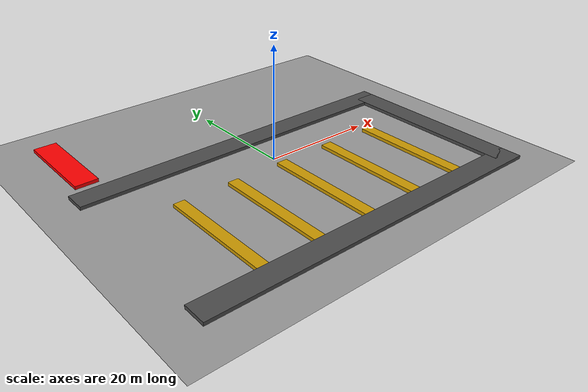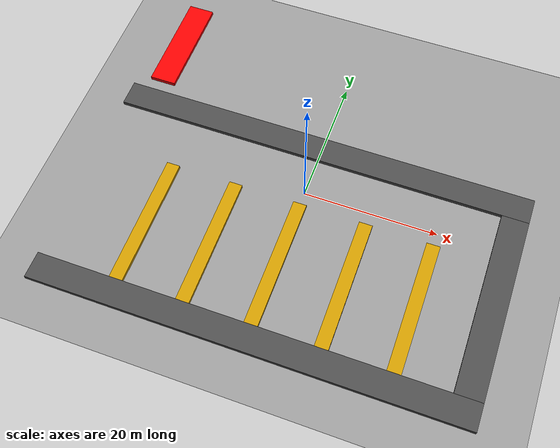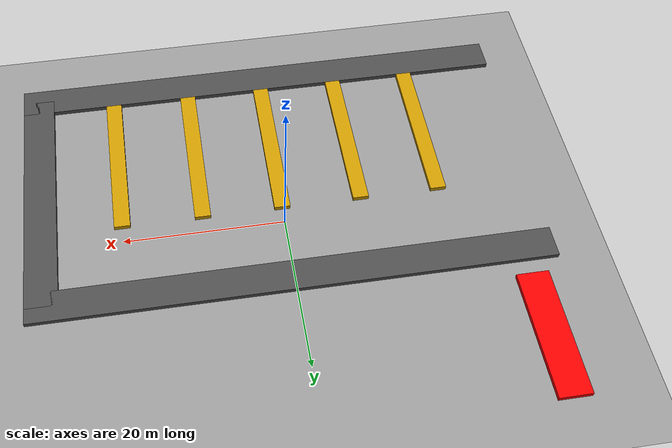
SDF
<sdf version="1.9">
 <world name="default">
  <physics type="ode">
   <max_step_size>0.01</max_step_size>
   <real_time_update_rate>60</real_time_update_rate>
  </physics>
  <model name="ground_plane">
   <static>true</static>
   <link name="link">
    <collision name="collision">
     <geometry><plane><normal>0 0 1</normal><size>100 100</size></plane></geometry>
     <surface><contact><collide_without_contact_bitmask>0x01</collide_without_contact_bitmask></contact></surface>
    </collision>
    <visual name="visual">
     <geometry><plane><normal>0 0 1</normal><size>100 100</size></plane></geometry>
     <material><ambient>0.6 0.6 0.6 1</ambient><diffuse>0.6 0.6 0.6 1</diffuse></material>
    </visual>
   </link>
  </model>
  <model name="comb_ceiling">
   <pose>0.0 8.0 0 0 0 0</pose>
   <link name="wall_link">
    <gravity>false</gravity>
    <visual name="visual">
     <geometry><box><size>64.0 4.0 1.0</size></box></geometry>
     <material><ambient>0.3 0.3 0.3 1</ambient></material>
    </visual>
   </link>
  </model>
  <model name="comb_floor">
   <pose>0.0 -24.0 0 0 0 0</pose>
   <link name="wall_link">
    <gravity>false</gravity>
    <visual name="visual">
     <geometry><box><size>64.0 4.0 1.0</size></box></geometry>
     <material><ambient>0.3 0.3 0.3 1</ambient></material>
    </visual>
   </link>
  </model>
  <model name="comb_back_wall">
   <pose>30.0 -8.0 0 0 0 0</pose>
   <link name="wall_link">
    <gravity>false</gravity>
    <visual name="visual">
     <geometry><box><size>4.0 32.0 1.0</size></box></geometry>
     <material><ambient>0.3 0.3 0.3 1</ambient></material>
    </visual>
   </link>
  </model>
  <model name="tooth_1">
   <pose>20.0 -12.0 0 0 0 0</pose>
   <link name="wall_link">
    <gravity>false</gravity>
    <visual name="visual">
     <geometry><box><size>2.0 20.0 1.0</size></box></geometry>
     <material><ambient>0.8 0.6 0.0 1</ambient></material>
    </visual>
   </link>
  </model>
  <model name="tooth_2">
   <pose>10.0 -12.0 0 0 0 0</pose>
   <link name="wall_link">
    <gravity>false</gravity>
    <visual name="visual">
     <geometry><box><size>2.0 20.0 1.0</size></box></geometry>
     <material><ambient>0.8 0.6 0.0 1</ambient></material>
    </visual>
   </link>
  </model>
  <model name="tooth_3">
   <pose>0.0 -12.0 0 0 0 0</pose>
   <link name="wall_link">
    <gravity>false</gravity>
    <visual name="visual">
     <geometry><box><size>2.0 20.0 1.0</size></box></geometry>
     <material><ambient>0.8 0.6 0.0 1</ambient></material>
    </visual>
   </link>
  </model>
  <model name="tooth_4">
   <pose>-10.0 -12.0 0 0 0 0</pose>
   <link name="wall_link">
    <gravity>false</gravity>
    <visual name="visual">
     <geometry><box><size>2.0 20.0 1.0</size></box></geometry>
     <material><ambient>0.8 0.6 0.0 1</ambient></material>
    </visual>
   </link>
  </model>
  <model name="tooth_5">
   <pose>-20.0 -12.0 0 0 0 0</pose>
   <link name="wall_link">
    <gravity>false</gravity>
    <visual name="visual">
     <geometry><box><size>2.0 20.0 1.0</size></box></geometry>
     <material><ambient>0.8 0.6 0.0 1</ambient></material>
    </visual>
   </link>
  </model>
  <model name="dynamic_guillotine">
   <pose>-28.0 20.0 0 0 0 0</pose>
   <link name="moving_link">
    <gravity>false</gravity>
    <visual name="visual">
     <geometry><box><size>4.0 16.0 1.0</size></box></geometry>
     <material><ambient>1 0 0 1</ambient></material>
    </visual>
   </link>
   <motion>
    <link_name>moving_link</link_name>
    <direction>0 -1 0</direction>
    <amplitude>20.0</amplitude>
    <speed>10.0</speed>
    <turnaround_threshold>0.5</turnaround_threshold>
   </motion>
  </model>
 </world>
</sdf>
